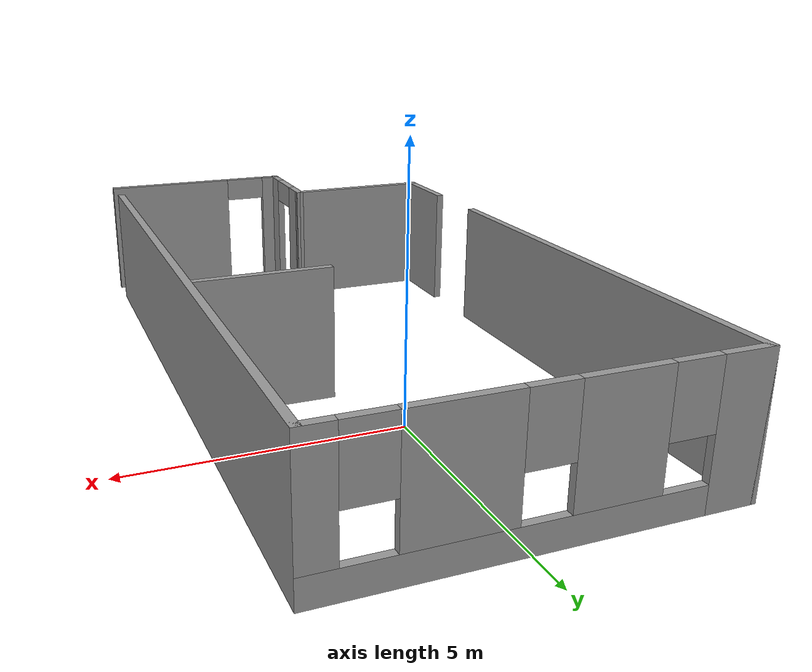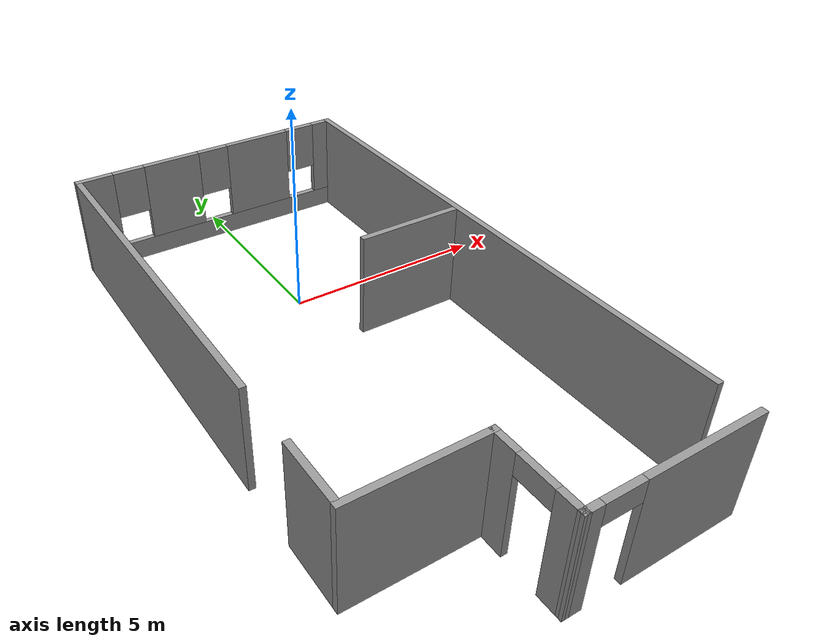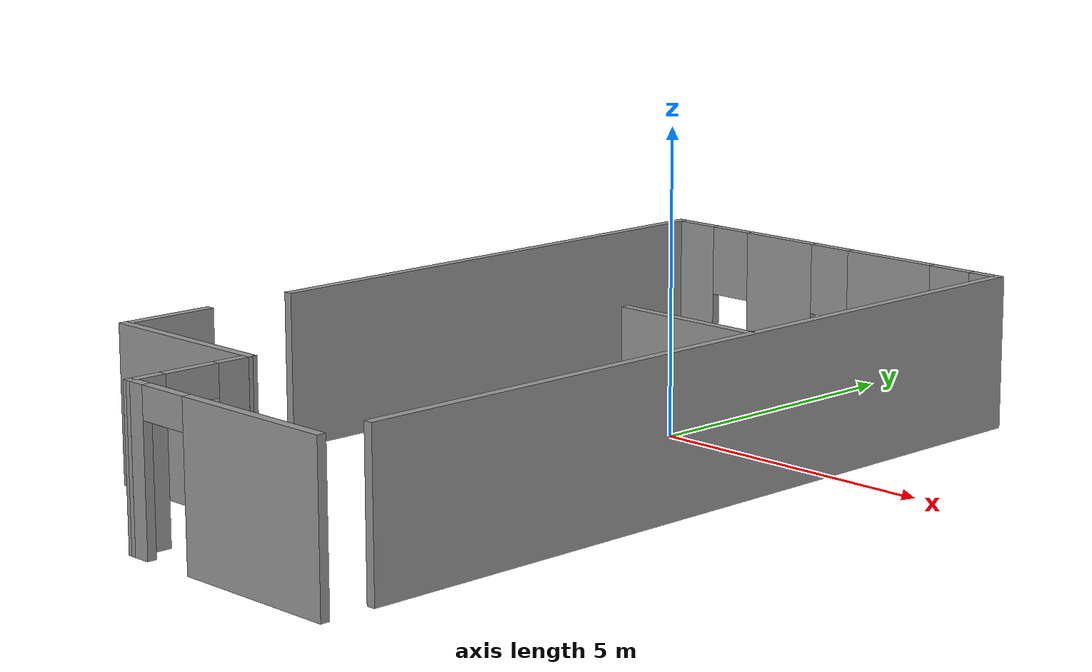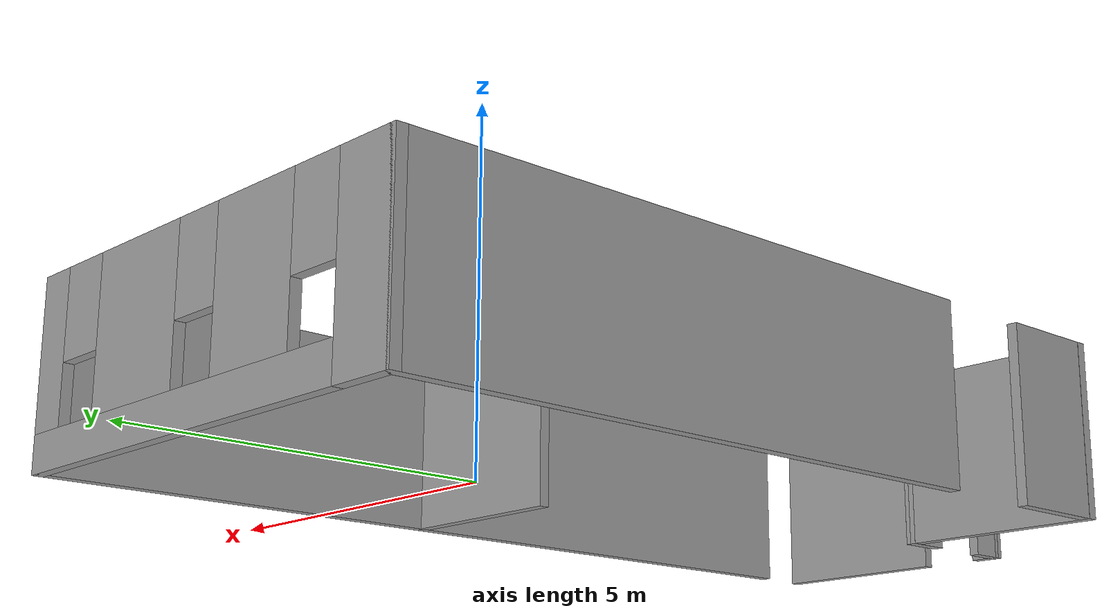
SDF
<?xml version='1.0'?>
<sdf version='1.7'>
  <model name='bochum'>
    <pose>-0.209556 -2.88416 0 0 -0 0</pose>
    <link name='Wall_11'>
      <collision name='Wall_11_Collision'>
        <geometry>
          <box>
            <size>3.11 0.15 2.5</size>
          </box>
        </geometry>
        <pose>0 0 1.25 0 -0 0</pose>
      </collision>
      <visual name='Wall_11_Visual'>
        <pose>0 0 1.25 0 -0 0</pose>
        <geometry>
          <box>
            <size>3.11 0.15 2.5</size>
          </box>
        </geometry>
        <material>
          <script>
            <uri>file://media/materials/scripts/gazebo.material</uri>
            <name>Gazebo/Grey</name>
          </script>
          <ambient>1 1 1 1</ambient>
        </material>
        <meta>
          <layer>0</layer>
        </meta>
      </visual>
      <pose>-1.98935 -4.9673 0 0 -0 0</pose>
    </link>
    <link name='Wall_12'>
      <pose>-0.512396 -5.98357 0 0 -0 -1.5738</pose>
      <visual name='Wall_12_Visual_0'>
        <pose>-0.753913 0 1.25 0 -0 0</pose>
        <geometry>
          <box>
            <size>0.674769 0.15 2.5</size>
          </box>
        </geometry>
        <material>
          <script>
            <uri>file://media/materials/scripts/gazebo.material</uri>
            <name>Gazebo/Grey</name>
          </script>
          <ambient>1 1 1 1</ambient>
        </material>
        <meta>
          <layer>0</layer>
        </meta>
      </visual>
      <collision name='Wall_12_Collision_0'>
        <geometry>
          <box>
            <size>0.674769 0.15 2.5</size>
          </box>
        </geometry>
        <pose>-0.753913 0 1.25 0 -0 0</pose>
      </collision>
      <visual name='Wall_12_Visual_1'>
        <pose>0.787384 0 1.25 0 -0 0</pose>
        <geometry>
          <box>
            <size>0.607826 0.15 2.5</size>
          </box>
        </geometry>
        <material>
          <script>
            <uri>file://media/materials/scripts/gazebo.material</uri>
            <name>Gazebo/Grey</name>
          </script>
          <ambient>1 1 1 1</ambient>
        </material>
        <meta>
          <layer>0</layer>
        </meta>
      </visual>
      <collision name='Wall_12_Collision_1'>
        <geometry>
          <box>
            <size>0.607826 0.15 2.5</size>
          </box>
        </geometry>
        <pose>0.787384 0 1.25 0 -0 0</pose>
      </collision>
      <visual name='Wall_12_Visual_2'>
        <pose>0.033471 0 2.25 0 -0 0</pose>
        <geometry>
          <box>
            <size>0.9 0.15 0.5</size>
          </box>
        </geometry>
        <material>
          <script>
            <uri>file://media/materials/scripts/gazebo.material</uri>
            <name>Gazebo/Grey</name>
          </script>
          <ambient>1 1 1 1</ambient>
        </material>
        <meta>
          <layer>0</layer>
        </meta>
      </visual>
      <collision name='Wall_12_Collision_2'>
        <geometry>
          <box>
            <size>0.9 0.15 0.5</size>
          </box>
        </geometry>
        <pose>0.033471 0 2.25 0 -0 0</pose>
      </collision>
    </link>
    <link name='Wall_14'>
      <collision name='Wall_14_Collision'>
        <geometry>
          <box>
            <size>8.97232 0.15 2.5</size>
          </box>
        </geometry>
        <pose>0 0 1.25 0 -0 0</pose>
      </collision>
      <visual name='Wall_14_Visual'>
        <pose>0 0 1.25 0 -0 0</pose>
        <geometry>
          <box>
            <size>8.97232 0.15 2.5</size>
          </box>
        </geometry>
        <material>
          <script>
            <uri>file://media/materials/scripts/gazebo.material</uri>
            <name>Gazebo/Grey</name>
          </script>
          <ambient>1 1 1 1</ambient>
        </material>
        <meta>
          <layer>0</layer>
        </meta>
      </visual>
      <pose>-3.485 2.58893 0 0 -0 -1.5708</pose>
    </link>
    <link name='Wall_17'>
      <collision name='Wall_17_Collision'>
        <geometry>
          <box>
            <size>1.5 0.15 2.5</size>
          </box>
        </geometry>
        <pose>0 0 1.25 0 -0 0</pose>
      </collision>
      <visual name='Wall_17_Visual'>
        <pose>0 0 1.25 0 -0 0</pose>
        <geometry>
          <box>
            <size>1.5 0.15 2.5</size>
          </box>
        </geometry>
        <material>
          <script>
            <uri>file://media/materials/scripts/gazebo.material</uri>
            <name>Gazebo/Grey</name>
          </script>
          <ambient>1 1 1 1</ambient>
        </material>
        <meta>
          <layer>0</layer>
        </meta>
      </visual>
      <pose>-3.46761 -4.15593 0 0 -0 -1.5708</pose>
    </link>
    <link name='Wall_21'>
      <collision name='Wall_21_Collision'>
        <geometry>
          <box>
            <size>2.6 0.15 2.5</size>
          </box>
        </geometry>
        <pose>0 0 1.25 0 -0 0</pose>
      </collision>
      <visual name='Wall_21_Visual'>
        <pose>0 0 1.25 0 -0 0</pose>
        <geometry>
          <box>
            <size>2.6 0.15 2.5</size>
          </box>
        </geometry>
        <material>
          <script>
            <uri>file://media/materials/scripts/gazebo.material</uri>
            <name>Gazebo/Grey</name>
          </script>
          <ambient>1 1 1 1</ambient>
        </material>
        <meta>
          <layer>0</layer>
        </meta>
      </visual>
      <pose>2.18488 1.15912 0 0 -0 0</pose>
    </link>
    <link name='Wall_3'>
      <pose>-0 7.00009 0 0 -0 0</pose>
      <visual name='Wall_3_Visual_0'>
        <pose>-3.09795 0 1.25 0 -0 0</pose>
        <geometry>
          <box>
            <size>0.9241 0.15 2.5</size>
          </box>
        </geometry>
        <material>
          <script>
            <uri>file://media/materials/scripts/gazebo.material</uri>
            <name>Gazebo/Grey</name>
          </script>
          <ambient>1 1 1 1</ambient>
        </material>
        <meta>
          <layer>0</layer>
        </meta>
      </visual>
      <collision name='Wall_3_Collision_0'>
        <geometry>
          <box>
            <size>0.9241 0.15 2.5</size>
          </box>
        </geometry>
        <pose>-3.09795 0 1.25 0 -0 0</pose>
      </collision>
      <visual name='Wall_3_Visual_1'>
        <pose>0.46205 0 0.25 0 -0 0</pose>
        <geometry>
          <box>
            <size>6.1959 0.15 0.5</size>
          </box>
        </geometry>
        <material>
          <script>
            <uri>file://media/materials/scripts/gazebo.material</uri>
            <name>Gazebo/Grey</name>
          </script>
          <ambient>1 1 1 1</ambient>
        </material>
        <meta>
          <layer>0</layer>
        </meta>
      </visual>
      <collision name='Wall_3_Collision_1'>
        <geometry>
          <box>
            <size>6.1959 0.15 0.5</size>
          </box>
        </geometry>
        <pose>0.46205 0 0.25 0 -0 0</pose>
      </collision>
      <visual name='Wall_3_Visual_2'>
        <pose>-1.10522 0 1.5 0 -0 0</pose>
        <geometry>
          <box>
            <size>1.46137 0.15 2</size>
          </box>
        </geometry>
        <material>
          <script>
            <uri>file://media/materials/scripts/gazebo.material</uri>
            <name>Gazebo/Grey</name>
          </script>
          <ambient>1 1 1 1</ambient>
        </material>
        <meta>
          <layer>0</layer>
        </meta>
      </visual>
      <collision name='Wall_3_Collision_2'>
        <geometry>
          <box>
            <size>1.46137 0.15 2</size>
          </box>
        </geometry>
        <pose>-1.10522 0 1.5 0 -0 0</pose>
      </collision>
      <visual name='Wall_3_Visual_3'>
        <pose>1.29748 0 1.5 0 -0 0</pose>
        <geometry>
          <box>
            <size>1.74404 0.15 2</size>
          </box>
        </geometry>
        <material>
          <script>
            <uri>file://media/materials/scripts/gazebo.material</uri>
            <name>Gazebo/Grey</name>
          </script>
          <ambient>1 1 1 1</ambient>
        </material>
        <meta>
          <layer>0</layer>
        </meta>
      </visual>
      <collision name='Wall_3_Collision_3'>
        <geometry>
          <box>
            <size>1.74404 0.15 2</size>
          </box>
        </geometry>
        <pose>1.29748 0 1.5 0 -0 0</pose>
      </collision>
      <visual name='Wall_3_Visual_4'>
        <pose>3.26475 0 1.5 0 -0 0</pose>
        <geometry>
          <box>
            <size>0.590498 0.15 2</size>
          </box>
        </geometry>
        <material>
          <script>
            <uri>file://media/materials/scripts/gazebo.material</uri>
            <name>Gazebo/Grey</name>
          </script>
          <ambient>1 1 1 1</ambient>
        </material>
        <meta>
          <layer>0</layer>
        </meta>
      </visual>
      <collision name='Wall_3_Collision_4'>
        <geometry>
          <box>
            <size>0.590498 0.15 2</size>
          </box>
        </geometry>
        <pose>3.26475 0 1.5 0 -0 0</pose>
      </collision>
      <visual name='Wall_3_Visual_5'>
        <pose>-2.2359 0 1.9 0 -0 0</pose>
        <geometry>
          <box>
            <size>0.8 0.15 1.2</size>
          </box>
        </geometry>
        <material>
          <script>
            <uri>file://media/materials/scripts/gazebo.material</uri>
            <name>Gazebo/Grey</name>
          </script>
          <ambient>1 1 1 1</ambient>
        </material>
        <meta>
          <layer>0</layer>
        </meta>
      </visual>
      <collision name='Wall_3_Collision_5'>
        <geometry>
          <box>
            <size>0.8 0.15 1.2</size>
          </box>
        </geometry>
        <pose>-2.2359 0 1.9 0 -0 0</pose>
      </collision>
      <visual name='Wall_3_Visual_6'>
        <pose>0.025466 0 1.9 0 -0 0</pose>
        <geometry>
          <box>
            <size>0.8 0.15 1.2</size>
          </box>
        </geometry>
        <material>
          <script>
            <uri>file://media/materials/scripts/gazebo.material</uri>
            <name>Gazebo/Grey</name>
          </script>
          <ambient>1 1 1 1</ambient>
        </material>
        <meta>
          <layer>0</layer>
        </meta>
      </visual>
      <collision name='Wall_3_Collision_6'>
        <geometry>
          <box>
            <size>0.8 0.15 1.2</size>
          </box>
        </geometry>
        <pose>0.025466 0 1.9 0 -0 0</pose>
      </collision>
      <visual name='Wall_3_Visual_7'>
        <pose>2.5695 0 1.9 0 -0 0</pose>
        <geometry>
          <box>
            <size>0.8 0.15 1.2</size>
          </box>
        </geometry>
        <material>
          <script>
            <uri>file://media/materials/scripts/gazebo.material</uri>
            <name>Gazebo/Grey</name>
          </script>
          <ambient>1 1 1 1</ambient>
        </material>
        <meta>
          <layer>0</layer>
        </meta>
      </visual>
      <collision name='Wall_3_Collision_7'>
        <geometry>
          <box>
            <size>0.8 0.15 1.2</size>
          </box>
        </geometry>
        <pose>2.5695 0 1.9 0 -0 0</pose>
      </collision>
    </link>
    <link name='Wall_5'>
      <collision name='Wall_5_Collision'>
        <geometry>
          <box>
            <size>13.25 0.15 2.5</size>
          </box>
        </geometry>
        <pose>0 0 1.25 0 -0 0</pose>
      </collision>
      <visual name='Wall_5_Visual'>
        <pose>0 0 1.25 0 -0 0</pose>
        <geometry>
          <box>
            <size>13.25 0.15 2.5</size>
          </box>
        </geometry>
        <material>
          <script>
            <uri>file://media/materials/scripts/gazebo.material</uri>
            <name>Gazebo/Grey</name>
          </script>
          <ambient>1 1 1 1</ambient>
        </material>
        <meta>
          <layer>0</layer>
        </meta>
      </visual>
      <pose>3.485 0.450086 0 0 -0 -1.5708</pose>
    </link>
    <link name='Wall_9'>
      <pose>1.48456 -6.99984 0 0 -0 3.14159</pose>
      <visual name='Wall_9_Visual_0'>
        <pose>-0.665967 0 1.25 0 -0 0</pose>
        <geometry>
          <box>
            <size>2.81807 0.15 2.5</size>
          </box>
        </geometry>
        <material>
          <script>
            <uri>file://media/materials/scripts/gazebo.material</uri>
            <name>Gazebo/Grey</name>
          </script>
          <ambient>1 1 1 1</ambient>
        </material>
        <meta>
          <layer>0</layer>
        </meta>
      </visual>
      <collision name='Wall_9_Collision_0'>
        <geometry>
          <box>
            <size>2.81807 0.15 2.5</size>
          </box>
        </geometry>
        <pose>-0.665967 0 1.25 0 -0 0</pose>
      </collision>
      <visual name='Wall_9_Visual_1'>
        <pose>1.85903 0 1.25 0 -0 0</pose>
        <geometry>
          <box>
            <size>0.431933 0.15 2.5</size>
          </box>
        </geometry>
        <material>
          <script>
            <uri>file://media/materials/scripts/gazebo.material</uri>
            <name>Gazebo/Grey</name>
          </script>
          <ambient>1 1 1 1</ambient>
        </material>
        <meta>
          <layer>0</layer>
        </meta>
      </visual>
      <collision name='Wall_9_Collision_1'>
        <geometry>
          <box>
            <size>0.431933 0.15 2.5</size>
          </box>
        </geometry>
        <pose>1.85903 0 1.25 0 -0 0</pose>
      </collision>
      <visual name='Wall_9_Visual_2'>
        <pose>1.19307 0 2.25 0 -0 0</pose>
        <geometry>
          <box>
            <size>0.9 0.15 0.5</size>
          </box>
        </geometry>
        <material>
          <script>
            <uri>file://media/materials/scripts/gazebo.material</uri>
            <name>Gazebo/Grey</name>
          </script>
          <ambient>1 1 1 1</ambient>
        </material>
        <meta>
          <layer>0</layer>
        </meta>
      </visual>
      <collision name='Wall_9_Collision_2'>
        <geometry>
          <box>
            <size>0.9 0.15 0.5</size>
          </box>
        </geometry>
        <pose>1.19307 0 2.25 0 -0 0</pose>
      </collision>
    </link>
    <static>1</static>
  </model>
</sdf>
